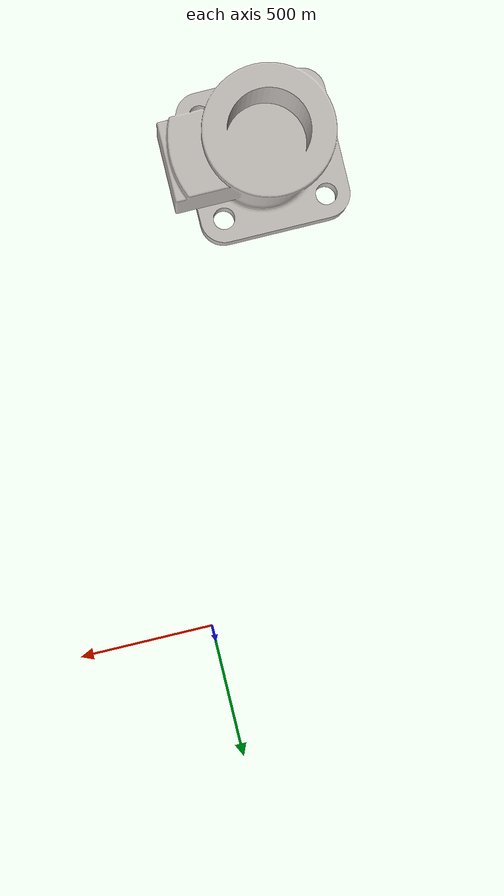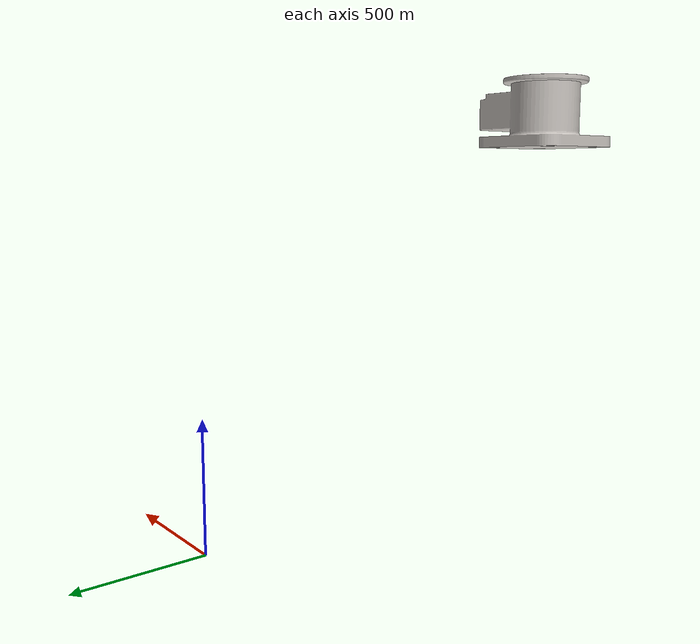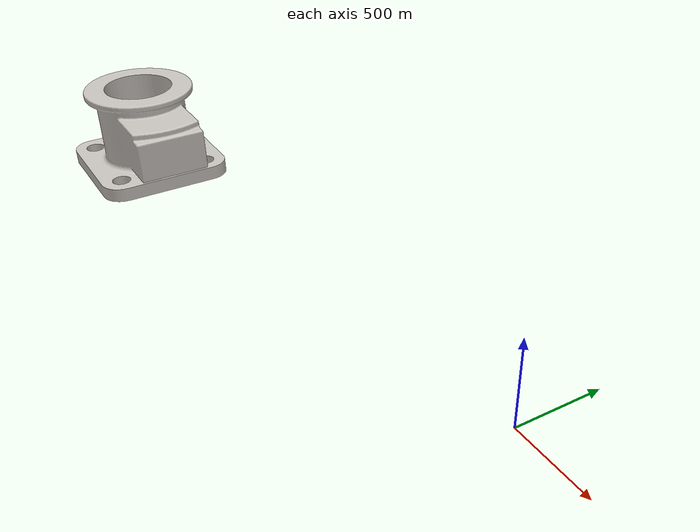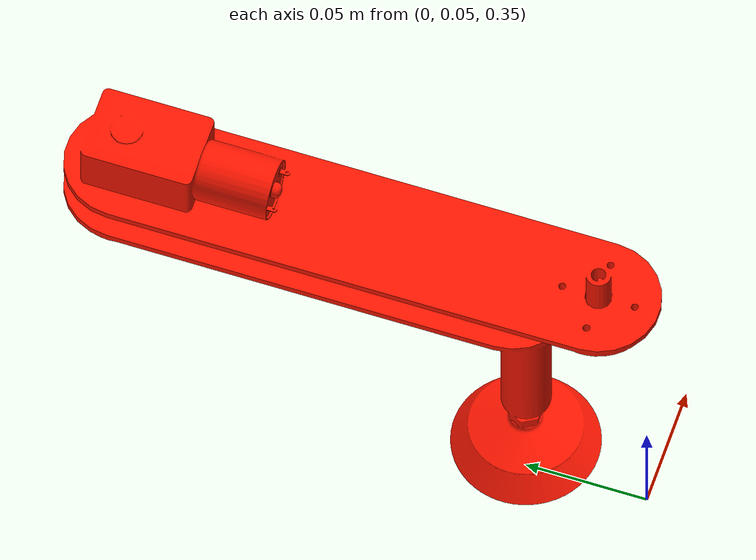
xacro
<?xml version="1.0"?>
<robot name="assem1" xmlns:xacro="http://www.ros.org/wiki/xacro">

  <material name="silver"><color rgba="0.776 0.756 0.737 1" /></material>
  <material name="dark_gray"><color rgba="0.3 0.3 0.3 1" /></material>
  <material name="red_arm"><color rgba="0.988 0.082 0 1" /></material>

  <link name="world" />

  <link name="base_link">

    <visual>
      <geometry>
        <mesh filename="package://assem1_description/meshes/base_link.STL"/>
      </geometry>
      <material name="silver"/>
    </visual>
    <collision>
      <origin
        xyz="0 0 0" rpy="0 0 0" />
      <geometry>
        <mesh filename="package://assem1_description/meshes/base_link.STL"/>
      </geometry>
    </collision>
    <inertial>
      <origin
        xyz="-0.00155506458890642 -0.0167350728595071 0.196068139571374"
        rpy="0 0 0" />
      <mass
        value="36.7025357857225" />
      <inertia
        ixx="1.19283308759496"
        ixy="-3.51896300637401E-06"
        ixz="1.99354682337673E-07"
        iyy="1.33312260434488"
        iyz="0.00419911892440131"
        izz="1.35147505804967" />
    </inertial>
  </link>

  <joint name="virtual_joint" type="fixed">
      <parent link="world"/>
      <child link="base_link"/>
      <origin xyz="0 0 0" rpy="0 0 0"/>
  </joint>

  <link name="arm_link1">
    <visual>
      <geometry>
        <mesh filename="package://assem1_description/meshes/Armlink1.STL"/>
      </geometry>
      <material name="red_arm"/>
    </visual>
    <collision>
      <origin
        xyz="0 0 0" rpy="0 0 0" />
      <geometry>
        <mesh filename="package://assem1_description/meshes/Armlink1.STL"/>
      </geometry>
    </collision>
    <inertial>
      <origin
        xyz="0.0003200901517868 0.10625947606417 0.00859769829677659"
        rpy="0 0 0" />
      <mass
        value="0.332522666985014" />
      <inertia
        ixx="0.00125293093936372"
        ixy="-4.70356148528572E-06"
        ixz="3.39571390138256E-10"
        iyy="6.28321938668438E-05"
        iyz="7.22390011604219E-08"
        izz="0.00131069685758587" />
    </inertial>
  </link>

  <joint name="joint_1" type="revolute">
    <origin
      xyz="0 0.069976 0.4897" rpy="0 0 0" />
    <parent link="base_link"/>
    <child link="arm_link1"/>
    <axis xyz="0 0 1"/>
    <limit lower="-0.785" upper="0.785" effort="100" velocity="3"/>
  </joint>

  <link name="arm_link2">
    <visual>
      <geometry>
        <mesh filename="package://assem1_description/meshes/armlink2.STL"/>
      </geometry>
      <material name="red_arm"/>
    </visual>
    <collision>
      <origin
        xyz="0 0 0" rpy="0 0 0" />
      <geometry>
        <mesh filename="package://assem1_description/meshes/armlink2.STL"/>
      </geometry>
    </collision>
    <inertial>
      <origin
        xyz="-0.000378523464681146 -0.0941307105712545 -0.00947503989193477"
        rpy="0 0 0" />
      <mass
        value="0.300704203880306" />
      <inertia
        ixx="0.000749795032834774"
        ixy="-2.68858863020437E-06"
        ixz="3.21601810886238E-08"
        iyy="7.27567345311832E-05"
        iyz="-4.00235469561631E-08"
        izz="0.000789914137832894" />
    </inertial>
  </link>

  <joint name="joint_2" type="revolute">
    <origin xyz="0.00077145 0.194994 -0.0168" rpy="0 0 0"/>
    <parent link="arm_link1"/>
    <child link="arm_link2"/>
    <axis xyz="0 0 1"/>
    <limit lower="-3.14" upper="3.14" effort="100" velocity="3"/>
  </joint>

</robot>
